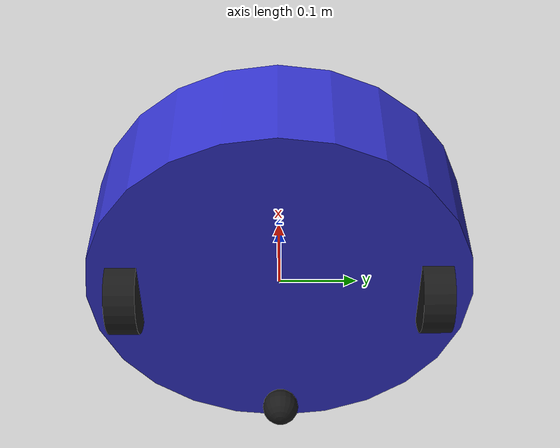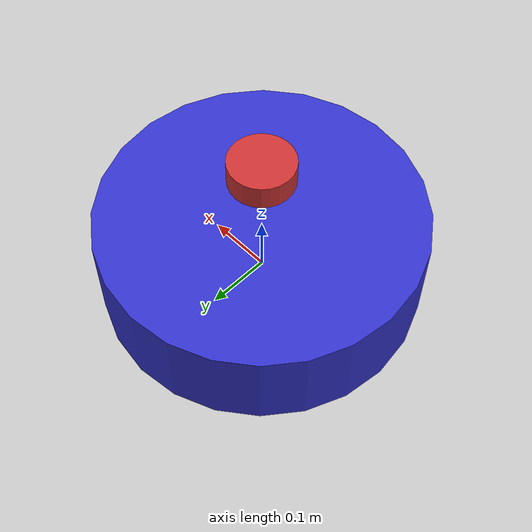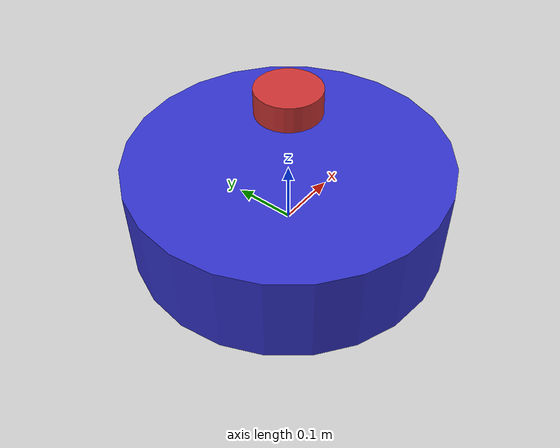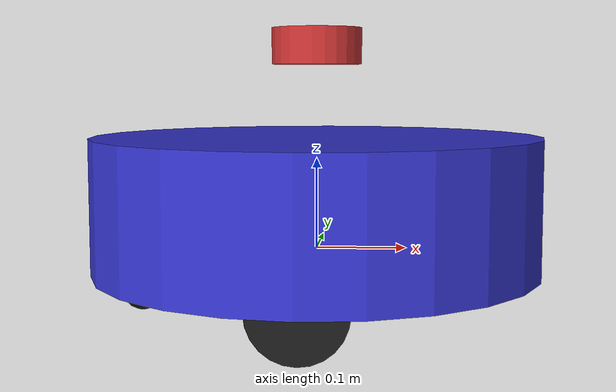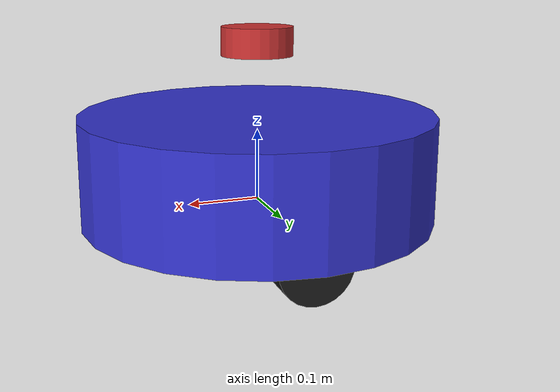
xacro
<?xml version="1.0"?>
<robot name="swarm_robot" xmlns:xacro="http://www.ros.org/wiki/xacro">
  <xacro:arg name="namespace" default=""/>

  <!-- Robot Parameters -->
  <xacro:property name="base_radius" value="0.25"/>
  <xacro:property name="base_height" value="0.15"/>
  <xacro:property name="wheel_radius" value="0.05"/>
  <xacro:property name="wheel_width" value="0.04"/>
  <xacro:property name="wheel_separation" value="0.4"/>
  <xacro:property name="lidar_height" value="0.10"/>

  <!-- Base Link -->
  <link name="base_footprint"/>

  <link name="base_link">
    <visual>
      <geometry>
        <cylinder radius="${base_radius}" length="${base_height}"/>
      </geometry>
      <material name="blue">
        <color rgba="0.2 0.2 0.8 1.0"/>
      </material>
    </visual>
    <collision>
      <geometry>
        <cylinder radius="${base_radius}" length="${base_height}"/>
      </geometry>
    </collision>
    <inertial>
      <mass value="10.0"/>
      <inertia ixx="0.1" ixy="0.0" ixz="0.0" iyy="0.1" iyz="0.0" izz="0.1"/>
    </inertial>
  </link>

  <joint name="base_footprint_joint" type="fixed">
    <parent link="base_footprint"/>
    <child link="base_link"/>
    <origin xyz="0 0 ${wheel_radius}" rpy="0 0 0"/>
  </joint>

  <!-- Left Wheel -->
  <link name="left_wheel">
    <visual>
      <geometry>
        <cylinder radius="${wheel_radius}" length="${wheel_width}"/>
      </geometry>
      <origin xyz="0 0 0" rpy="1.5708 0 0"/>
      <material name="black">
        <color rgba="0.1 0.1 0.1 1.0"/>
      </material>
    </visual>
    <collision>
      <geometry>
        <cylinder radius="${wheel_radius}" length="${wheel_width}"/>
      </geometry>
      <origin xyz="0 0 0" rpy="1.5708 0 0"/>
    </collision>
    <inertial>
      <mass value="1.0"/>
      <inertia ixx="0.01" ixy="0.0" ixz="0.0" iyy="0.01" iyz="0.0" izz="0.01"/>
    </inertial>
  </link>

  <joint name="left_wheel_joint" type="continuous">
    <parent link="base_link"/>
    <child link="left_wheel"/>
    <origin xyz="0 ${wheel_separation/2} ${-base_height/2}" rpy="0 0 0"/>
    <axis xyz="0 1 0"/>
  </joint>

  <!-- Right Wheel -->
  <link name="right_wheel">
    <visual>
      <geometry>
        <cylinder radius="${wheel_radius}" length="${wheel_width}"/>
      </geometry>
      <origin xyz="0 0 0" rpy="1.5708 0 0"/>
      <material name="black">
        <color rgba="0.1 0.1 0.1 1.0"/>
      </material>
    </visual>
    <collision>
      <geometry>
        <cylinder radius="${wheel_radius}" length="${wheel_width}"/>
      </geometry>
      <origin xyz="0 0 0" rpy="1.5708 0 0"/>
    </collision>
    <inertial>
      <mass value="1.0"/>
      <inertia ixx="0.01" ixy="0.0" ixz="0.0" iyy="0.01" iyz="0.0" izz="0.01"/>
    </inertial>
  </link>

  <joint name="right_wheel_joint" type="continuous">
    <parent link="base_link"/>
    <child link="right_wheel"/>
    <origin xyz="0 ${-wheel_separation/2} ${-base_height/2}" rpy="0 0 0"/>
    <axis xyz="0 1 0"/>
  </joint>

  <!-- LiDAR Sensor -->
  <link name="laser_link">
    <visual>
      <geometry>
        <cylinder radius="0.05" length="0.04"/>
      </geometry>
      <material name="red">
        <color rgba="0.8 0.2 0.2 1.0"/>
      </material>
    </visual>
    <collision>
      <geometry>
        <cylinder radius="0.05" length="0.04"/>
      </geometry>
    </collision>
    <inertial>
      <mass value="0.5"/>
      <inertia ixx="0.001" ixy="0.0" ixz="0.0" iyy="0.001" iyz="0.0" izz="0.001"/>
    </inertial>
  </link>

  <joint name="laser_joint" type="fixed">
    <parent link="base_link"/>
    <child link="laser_link"/>
    <origin xyz="0 0 ${base_height/2 + lidar_height}" rpy="0 0 0"/>
  </joint>

  <!-- Caster Ball for 3-point stability -->
  <link name="caster_link">
    <visual>
      <geometry>
        <sphere radius="0.025"/>
      </geometry>
      <material name="black">
        <color rgba="0.1 0.1 0.1 1.0"/>
      </material>
    </visual>
    <collision>
      <geometry>
        <sphere radius="0.025"/>
      </geometry>
    </collision>
    <inertial>
      <mass value="0.1"/>
      <inertia ixx="0.0001" ixy="0.0" ixz="0.0" iyy="0.0001" iyz="0.0" izz="0.0001"/>
    </inertial>
  </link>

  <joint name="caster_joint" type="fixed">
    <parent link="base_link"/>
    <child link="caster_link"/>
    <origin xyz="${-base_radius + 0.05} 0 ${-base_height/2 - 0.025}" rpy="0 0 0"/>
  </joint>

  <!-- Gazebo Plugins (Gazebo Harmonic / gz-sim8) -->
  <gazebo>
    <plugin filename="gz-sim-diff-drive-system" name="gz::sim::systems::DiffDrive">
      <left_joint>left_wheel_joint</left_joint>
      <right_joint>right_wheel_joint</right_joint>
      <wheel_separation>0.4</wheel_separation>
      <wheel_radius>0.05</wheel_radius>
      <odom_publish_frequency>20</odom_publish_frequency>
      <topic>/$(arg namespace)/cmd_vel</topic>
      <odom_topic>/$(arg namespace)/odom</odom_topic>
      <tf_topic>/model/$(arg namespace)/tf</tf_topic>
      <publish_odom>true</publish_odom>
      <publish_odom_tf>true</publish_odom_tf>
      <frame_id>$(arg namespace)/odom</frame_id>
      <child_frame_id>$(arg namespace)/base_footprint</child_frame_id>
    </plugin>

  </gazebo>

  <gazebo>
    <plugin filename="gz-sim-joint-state-publisher-system" name="gz::sim::systems::JointStatePublisher">
      <topic>/$(arg namespace)/joint_states</topic>
      <joint_name>left_wheel_joint</joint_name>
      <joint_name>right_wheel_joint</joint_name>
    </plugin>
  </gazebo>

  <gazebo reference="laser_link">
    <sensor name="laser_sensor" type="gpu_lidar">
      <topic>/$(arg namespace)/scan</topic>
      <gz_frame_id>$(arg namespace)/laser_link</gz_frame_id>
      <update_rate>10.0</update_rate>
      <lidar>
        <scan>
          <horizontal>
            <samples>360</samples>
            <resolution>1.0</resolution>
            <min_angle>-3.14159</min_angle>
            <max_angle>3.14159</max_angle>
          </horizontal>
        </scan>
        <range>
          <min>0.12</min>
          <max>12.0</max>
          <resolution>0.01</resolution>
        </range>
        <noise>
          <type>gaussian</type>
          <mean>0.0</mean>
          <stddev>0.01</stddev>
        </noise>
      </lidar>
      <always_on>true</always_on>
      <visualize>false</visualize>
    </sensor>
  </gazebo>

  <gazebo reference="base_link">
    <material>Gazebo/Blue</material>
  </gazebo>

  <gazebo reference="left_wheel">
    <material>Gazebo/Black</material>
  </gazebo>

  <gazebo reference="right_wheel">
    <material>Gazebo/Black</material>
  </gazebo>

  <gazebo reference="laser_link">
    <material>Gazebo/Red</material>
  </gazebo>

</robot>
